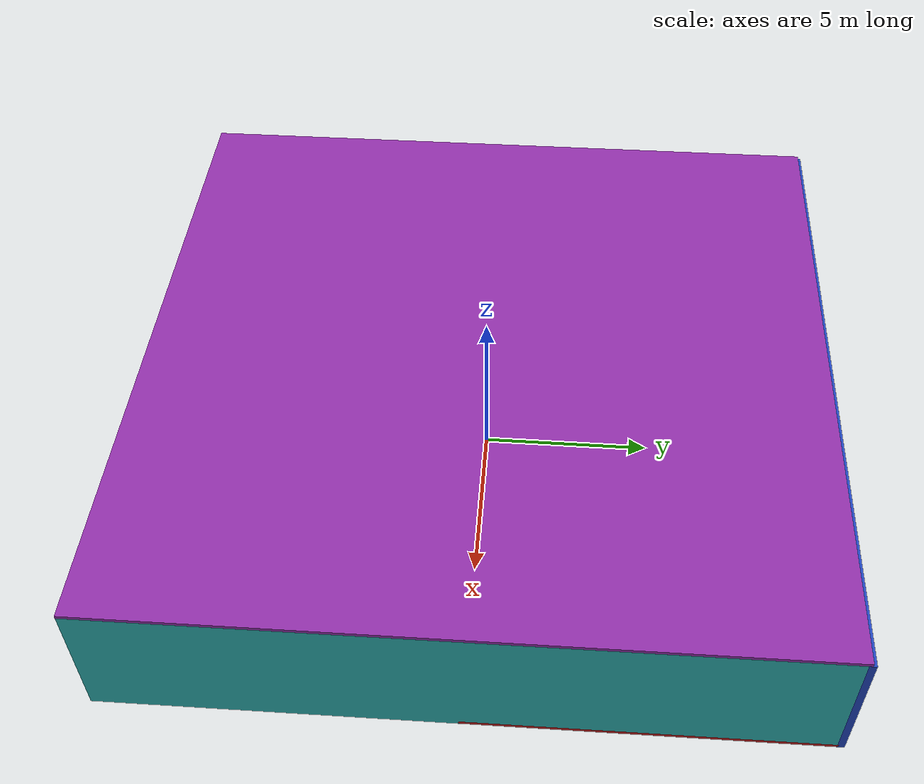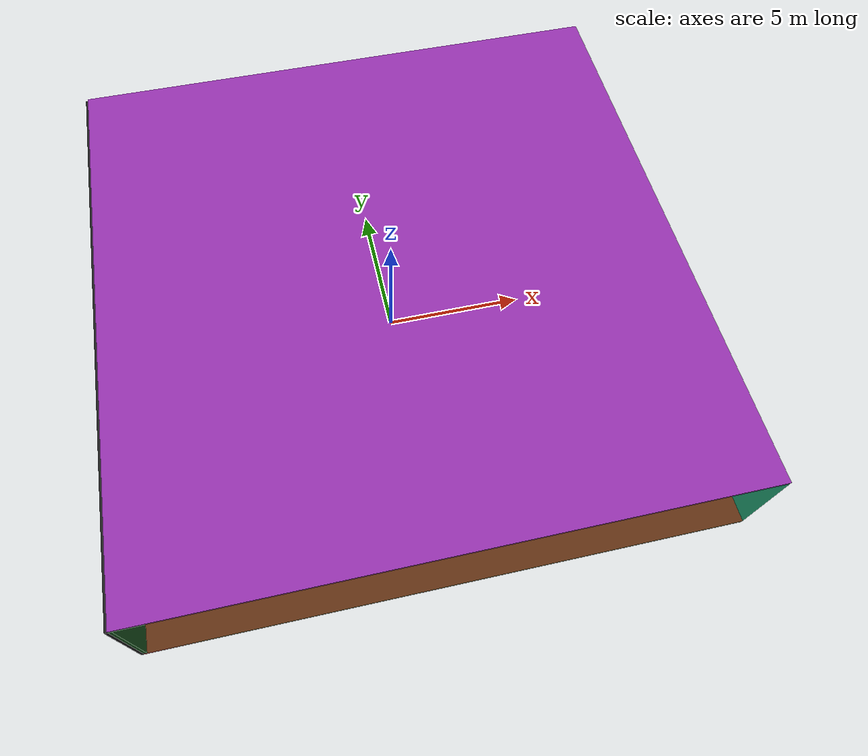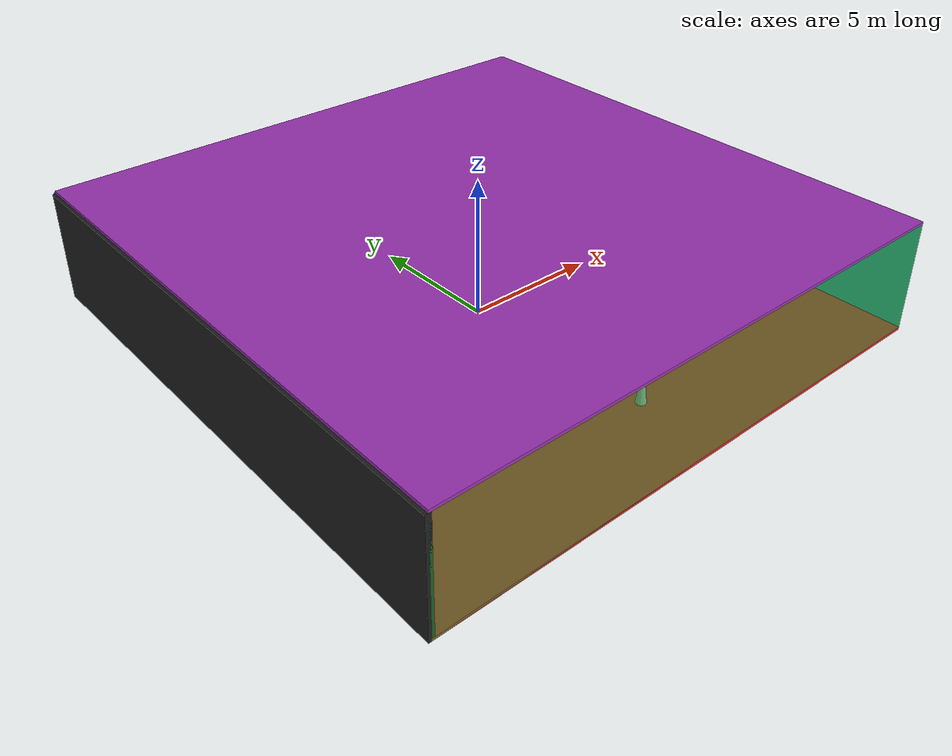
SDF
<sdf version="1.4">
 <world name="default">
  <physics type="ode">
   <max_step_size>0.001</max_step_size>
   <real_time_factor>1</real_time_factor>
   <real_time_update_rate>1000</real_time_update_rate>
   <gravity>0 0 -9.8</gravity>
  </physics>
  <scene><ambient>0.4 0.4 0.4 1</ambient><background>0.7 0.7 0.7 1</background><shadows>1</shadows></scene>
  <model name="Surrounding">
   <static>1</static>
   <link name="Ceiling">
    <collision name="Ceiling_Collision"><geometry><box><size>20 20 0.1</size></box></geometry></collision>
    <visual name="Ceiling_Visual">
     <geometry><box><size>20 20 0.1</size></box></geometry>
     <material>
      <script><uri>file://media/materials/scripts/gazebo.material</uri><name>Gazebo/PurpleGlow</name></script>
     </material>
    </visual>
    <pose>0 0 4.05 0 0 0</pose>
   </link>
   <link name="Wall_South">
    <collision name="Wall_South_Collision">
     <geometry><box><size>20 0 4</size></box></geometry>
     <pose>0 0 2 0 -0 0</pose>
    </collision>
    <visual name="Wall_South_Visual">
     <pose>0 0 2 0 -0 0</pose>
     <geometry><box><size>20 0 4</size></box></geometry>
     <material>
      <script><uri>file://media/materials/scripts/gazebo.material</uri><name>Gazebo/GreenTransparent</name></script>
     </material>
    </visual>
    <velocity_decay><linear>0</linear><angular>0</angular></velocity_decay>
    <pose>0 -10 0 0 -0 0</pose>
   </link>
   <link name="Wall_East">
    <collision name="Wall_21_Collision">
     <geometry><box><size>20 0 4</size></box></geometry>
     <pose>0 0 2 0 -0 0</pose>
    </collision>
    <visual name="Wall_21_Visual">
     <pose>0 0 2 0 -0 0</pose>
     <geometry><box><size>20 0 4</size></box></geometry>
     <material>
      <script><uri>file://media/materials/scripts/gazebo.material</uri><name>Gazebo/Turquoise</name></script>
     </material>
    </visual>
    <velocity_decay><linear>0</linear><angular>0</angular></velocity_decay>
    <pose>10 0 0 0 -0 1.5708</pose>
   </link>
   <link name="Wall_North">
    <collision name="Wall_22_Collision">
     <geometry><box><size>20 0.2 4</size></box></geometry>
     <pose>0 0 2 0 -0 0</pose>
    </collision>
    <visual name="Wall_22_Visual">
     <pose>0 0 2 0 -0 0</pose>
     <geometry><box><size>20 0.2 4</size></box></geometry>
     <material>
      <script><uri>file://media/materials/scripts/gazebo.material</uri><name>Gazebo/BlueLaser</name></script>
     </material>
    </visual>
    <velocity_decay><linear>0</linear><angular>0</angular></velocity_decay>
    <pose>0 10 0 0 -0 0</pose>
   </link>
   <link name="Wall_West">
    <collision name="Wall_23_Collision">
     <geometry><box><size>20 0.2 4</size></box></geometry>
     <pose>0 0 2 0 -0 0</pose>
    </collision>
    <visual name="Wall_23_Visual">
     <pose>0 0 2 0 -0 0</pose>
     <geometry><box><size>20 0.2 4</size></box></geometry>
     <material>
      <script><uri>file://media/materials/scripts/gazebo.material</uri><name>Gazebo/Black</name></script>
     </material>
    </visual>
    <velocity_decay><linear>0</linear><angular>0</angular></velocity_decay>
    <pose>-10 0 0 0 0 -1.5708</pose>
   </link>
   <link name="Ground_link">
    <collision name="collision">
     <pose>0 0 .05 0 -0 0</pose>
     <geometry><box><size>20 20 0.1</size></box></geometry>
    </collision>
    <visual name="visual">
     <pose>0 0 .05 0 -0 0</pose>
     <geometry><box><size>20 20 0.1</size></box></geometry>
     <material>
      <script><uri>file://media/materials/scripts/gazebo.material</uri><name>Gazebo/RedBright</name></script>
     </material>
    </visual>
   </link>
   <static>1</static>
  </model>
  <spherical_coordinates>
   <surface_model>EARTH_WGS84</surface_model>
   <latitude_deg>0</latitude_deg>
   <longitude_deg>0</longitude_deg>
   <elevation>0</elevation>
   <heading_deg>0</heading_deg>
  </spherical_coordinates>
  <light name="lightball_0" type="diffuse">
   <diffuse>0.8 0.8 0.8 1</diffuse>
   <specular>0.2 0.2 0.2 1</specular>
   <attenuation>
    <range>100</range>
    <constant>0.7</constant>
    <linear>0.01</linear>
    <quadratic>0.001</quadratic>
   </attenuation>
   <direction>-0.5 0.1 -0.9</direction>
   <pose>-7.64657728138 -3.76378754727 2.23897532695 0 0 0</pose>
  </light>
  <light name="lightball_1" type="diffuse">
   <diffuse>0.8 0.8 0.8 1</diffuse>
   <specular>0.2 0.2 0.2 1</specular>
   <attenuation>
    <range>100</range>
    <constant>0.7</constant>
    <linear>0.01</linear>
    <quadratic>0.001</quadratic>
   </attenuation>
   <direction>-0.5 0.1 -0.9</direction>
   <pose>-2.84628158727 -0.421001318708 1.86020912943 0 0 0</pose>
  </light>
  <light name="lightball_2" type="diffuse">
   <diffuse>0.8 0.8 0.8 1</diffuse>
   <specular>0.2 0.2 0.2 1</specular>
   <attenuation>
    <range>100</range>
    <constant>0.7</constant>
    <linear>0.01</linear>
    <quadratic>0.001</quadratic>
   </attenuation>
   <direction>-0.5 0.1 -0.9</direction>
   <pose>-5.85131006304 2.18383529554 3.31256825295 0 0 0</pose>
  </light>
  <light name="lightball_3" type="diffuse">
   <diffuse>0.8 0.8 0.8 1</diffuse>
   <specular>0.2 0.2 0.2 1</specular>
   <attenuation>
    <range>100</range>
    <constant>0.7</constant>
    <linear>0.01</linear>
    <quadratic>0.001</quadratic>
   </attenuation>
   <direction>-0.5 0.1 -0.9</direction>
   <pose>3.25616595829 0.620774142731 2.56569192961 0 0 0</pose>
  </light>
  <light name="lightball_4" type="diffuse">
   <diffuse>0.8 0.8 0.8 1</diffuse>
   <specular>0.2 0.2 0.2 1</specular>
   <attenuation>
    <range>100</range>
    <constant>0.7</constant>
    <linear>0.01</linear>
    <quadratic>0.001</quadratic>
   </attenuation>
   <direction>-0.5 0.1 -0.9</direction>
   <pose>-0.524870781098 1.98224264767 1.90341111637 0 0 0</pose>
  </light>
  <light name="lightball_5" type="diffuse">
   <diffuse>0.8 0.8 0.8 1</diffuse>
   <specular>0.2 0.2 0.2 1</specular>
   <attenuation>
    <range>100</range>
    <constant>0.7</constant>
    <linear>0.01</linear>
    <quadratic>0.001</quadratic>
   </attenuation>
   <direction>-0.5 0.1 -0.9</direction>
   <pose>3.6314295619 5.92072400648 2.03778731744 0 0 0</pose>
  </light>
  <light name="lightball_6" type="diffuse">
   <diffuse>0.8 0.8 0.8 1</diffuse>
   <specular>0.2 0.2 0.2 1</specular>
   <attenuation>
    <range>100</range>
    <constant>0.7</constant>
    <linear>0.01</linear>
    <quadratic>0.001</quadratic>
   </attenuation>
   <direction>-0.5 0.1 -0.9</direction>
   <pose>8.83852716857 -5.21525321805 1.48951109389 0 0 0</pose>
  </light>
  <light name="lightball_7" type="diffuse">
   <diffuse>0.8 0.8 0.8 1</diffuse>
   <specular>0.2 0.2 0.2 1</specular>
   <attenuation>
    <range>100</range>
    <constant>0.7</constant>
    <linear>0.01</linear>
    <quadratic>0.001</quadratic>
   </attenuation>
   <direction>-0.5 0.1 -0.9</direction>
   <pose>-3.25923224716 -3.05209790442 0.958232550634 0 0 0</pose>
  </light>
  <light name="lightball_8" type="diffuse">
   <diffuse>0.8 0.8 0.8 1</diffuse>
   <specular>0.2 0.2 0.2 1</specular>
   <attenuation>
    <range>100</range>
    <constant>0.7</constant>
    <linear>0.01</linear>
    <quadratic>0.001</quadratic>
   </attenuation>
   <direction>-0.5 0.1 -0.9</direction>
   <pose>-2.17080772942 1.12733330875 0.526674595004 0 0 0</pose>
  </light>
  <light name="lightball_9" type="diffuse">
   <diffuse>0.8 0.8 0.8 1</diffuse>
   <specular>0.2 0.2 0.2 1</specular>
   <attenuation>
    <range>100</range>
    <constant>0.7</constant>
    <linear>0.01</linear>
    <quadratic>0.001</quadratic>
   </attenuation>
   <direction>-0.5 0.1 -0.9</direction>
   <pose>-1.1870310003 6.11658799924 0.949337903654 0 0 0</pose>
  </light>
  <light name="lightball_10" type="diffuse">
   <diffuse>0.8 0.8 0.8 1</diffuse>
   <specular>0.2 0.2 0.2 1</specular>
   <attenuation>
    <range>100</range>
    <constant>0.7</constant>
    <linear>0.01</linear>
    <quadratic>0.001</quadratic>
   </attenuation>
   <direction>-0.5 0.1 -0.9</direction>
   <pose>-0.0191358014476 -7.59409716243 3.29214379585 0 0 0</pose>
  </light>
  <light name="lightball_11" type="diffuse">
   <diffuse>0.8 0.8 0.8 1</diffuse>
   <specular>0.2 0.2 0.2 1</specular>
   <attenuation>
    <range>100</range>
    <constant>0.7</constant>
    <linear>0.01</linear>
    <quadratic>0.001</quadratic>
   </attenuation>
   <direction>-0.5 0.1 -0.9</direction>
   <pose>1.44007800928 -1.35905305775 3.62533530986 0 0 0</pose>
  </light>
  <light name="lightball_12" type="diffuse">
   <diffuse>0.8 0.8 0.8 1</diffuse>
   <specular>0.2 0.2 0.2 1</specular>
   <attenuation>
    <range>100</range>
    <constant>0.7</constant>
    <linear>0.01</linear>
    <quadratic>0.001</quadratic>
   </attenuation>
   <direction>-0.5 0.1 -0.9</direction>
   <pose>-3.16898591882 8.62214080948 3.29405113347 0 0 0</pose>
  </light>
  <include><uri>model://cabinet</uri><pose>-4.77949685506 -0.837239519561 0 0 0 0.065995505981</pose></include>
  <include><uri>model://cabinet</uri><pose>-1.3701294354 7.2392826722 0 0 0 2.88327225782</pose></include>
  <include>
   <uri>model://construction_cone</uri>
   <pose>0.374371711783 -7.13056425827 0 0 0 0.754362240001</pose>
  </include>
  <include>
   <uri>model://textured_shapes</uri>
   <pose>0.326084825046 4.03396968027 0 0 0 3.11478612213</pose>
  </include>
  <include>
   <uri>model://textured_shapes</uri>
   <pose>7.48520022536 5.0995874461 0 0 0 2.07306997412</pose>
  </include>
  <include><uri>model://cabinet</uri><pose>7.06645660567 7.09062259609 0 0 0 2.02099936705</pose></include>
 </world>
</sdf>

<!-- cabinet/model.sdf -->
<sdf version="1.5">
  <model name="cabinet">
    <static>true</static>
    <link name="cabinet_bottom_plate">
      <inertial>
        <pose>0 0 -1 0 0 0</pose>
        <inertia>
          <ixx>2.050000</ixx>
          <ixy>0</ixy>
          <ixz>0</ixz>
          <iyy>2.050000</iyy>
          <iyz>0</iyz>
          <izz>2.050000</izz>
        </inertia>
        <mass>25.000000</mass>
      </inertial>
      <collision name="cabinet_bottom_plate_geom">
        <pose>0 0 0.010000 0 0 0</pose>
        <geometry>
          <box>
            <size>0.450000 0.450000 0.020000</size>
          </box>
        </geometry>
      </collision>
      <visual name="cabinet_bottom_plate_geom_visual">
        <pose>0 0 0.010000 0 0 0</pose>
        <geometry>
          <box>
            <size>0.450000 0.450000 0.020000</size>
          </box>
        </geometry>
        <material>
          <script>
            <uri>model://media/materials/scripts/gazebo.material</uri>
            <name>Gazebo/Wood</name>
          </script>
        </material>
      </visual>
      <collision name="cabinet_bottom_plate_geom_cabinet_back_plate">
        <pose>0.235000 0 0.510000 0 0 0</pose>
        <geometry>
          <box>
            <size>0.020000 0.450000 1.020000</size>
          </box>
        </geometry>
      </collision>
      <visual name="cabinet_bottom_plate_geom_cabinet_back_plate_visual">
        <pose>0.235000 0 0.510000 0 0 0</pose>
        <geometry>
          <box>
            <size>0.020000 0.450000 1.020000</size>
          </box>
        </geometry>
        <material>
          <script>
            <uri>model://media/materials/scripts/gazebo.material</uri>
            <name>Gazebo/Wood</name>
          </script>
        </material>
      </visual>
      <collision name="cabinet_bottom_plate_geom_cabinet_left_plate">
        <pose>0 0.235000 0.510000 0 0 0</pose>
        <geometry>
          <box>
            <size>0.450000 0.020000 1.020000</size>
          </box>
        </geometry>
      </collision>
      <visual name="cabinet_bottom_plate_geom_cabinet_left_plate_visual">
        <pose>0 0.235000 0.510000 0 0 0</pose>
        <geometry>
          <box>
            <size>0.450000 0.020000 1.020000</size>
          </box>
        </geometry>
        <material>
          <script>
            <uri>model://media/materials/scripts/gazebo.material</uri>
            <name>Gazebo/Wood</name>
          </script>
        </material>
      </visual>
      <collision name="cabinet_bottom_plate_geom_cabinet_middle_plate">
        <pose>0 0 0.510000 0 0 0</pose>
        <geometry>
          <box>
            <size>0.450000 0.450000 0.020000</size>
          </box>
        </geometry>
      </collision>
      <visual name="cabinet_bottom_plate_geom_cabinet_middle_plate_visual">
        <pose>0 0 0.510000 0 0 0</pose>
        <geometry>
          <box>
            <size>0.450000 0.450000 0.020000</size>
          </box>
        </geometry>
        <material>
          <script>
            <uri>model://media/materials/scripts/gazebo.material</uri>
            <name>Gazebo/Wood</name>
          </script>
        </material>
      </visual>
      <collision name="cabinet_bottom_plate_geom_cabinet_right_plate">
        <pose>0 -0.235000 0.510000 0 0 0</pose>
        <geometry>
          <box>
            <size>0.450000 0.020000 1.020000</size>
          </box>
        </geometry>
      </collision>
      <visual name="cabinet_bottom_plate_geom_cabinet_right_plate_visual">
        <pose>0 -0.235000 0.510000 0 0 0</pose>
        <geometry>
          <box>
            <size>0.450000 0.020000 1.020000</size>
          </box>
        </geometry>
        <material>
          <script>
            <uri>model://media/materials/scripts/gazebo.material</uri>
            <name>Gazebo/Wood</name>
          </script>
        </material>
      </visual>
      <collision name="cabinet_bottom_plate_geom_cabinet_top_plate">
        <pose>0 0 1.010000 0 0 0</pose>
        <geometry>
          <box>
            <size>0.450000 0.450000 0.020000</size>
          </box>
        </geometry>
      </collision>
      <visual name="cabinet_bottom_plate_geom_cabinet_top_plate_visual">
        <pose>0 0 1.010000 0 0 0</pose>
        <geometry>
          <box>
            <size>0.450000 0.450000 0.020000</size>
          </box>
        </geometry>
        <material>
          <script>
            <uri>model://media/materials/scripts/gazebo.material</uri>
            <name>Gazebo/Wood</name>
          </script>
        </material>
      </visual>
    </link>
  </model>
</sdf>

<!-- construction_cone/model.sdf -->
<sdf version="1.5">
  <model name="Construction Cone">
    <link name="link">
      <collision name="collision">
        <geometry>
          <mesh>
            <scale>10 10 10</scale>
            <uri>file://isr-testbed/construction_cone/meshes/construction_cone.dae</uri>
          </mesh>
        </geometry>
      </collision>
      <visual name="visual">
        <geometry>
          <mesh>
            <scale>10 10 10</scale>
            <uri>file://isr-testbed/construction_cone/meshes/construction_cone.dae</uri>
          </mesh>
        </geometry>
      </visual>
    </link>
  </model>
</sdf>

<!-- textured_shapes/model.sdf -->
<sdf version="1.6">
  <model name="textured_shapes">
    <pose>0 0 0.5 0 0 0</pose>
    <link name="box">
      <pose>0 -1.5 0 0 0 0</pose>
      <collision name="collision">
        <geometry>
          <box>
            <size>1 1 1</size>
          </box>
        </geometry>
      </collision>
      <visual name="visual">
        <geometry>
          <box>
            <size>1 1 1</size>
          </box>
        </geometry>
        <material>
          <script>
            <uri>model://../model_source/models/textured_shapes/materials/scripts</uri>
            <uri>model://../model_source/models/textured_shapes/materials/textures</uri>
            <name>TexturedShape/Squares</name>
          </script>
        </material>
      </visual>
    </link>
    <link name="sphere">
      <collision name="collision">
        <geometry>
          <sphere>
            <radius>0.5</radius>
          </sphere>
        </geometry>
      </collision>
      <visual name="visual">
        <geometry>
          <sphere>
            <radius>0.5</radius>
          </sphere>
        </geometry>
        <material>
          <script>
            <uri>model://../model_source/models/textured_shapes/materials/scripts</uri>
            <uri>model://../model_source/models/textured_shapes/materials/textures</uri>
            <name>TexturedShape/Squares</name>
          </script>
        </material>
      </visual>
    </link>
    <link name="cylinder">
      <pose>0 1.5 0 0 0 0</pose>
      <collision name="collision">
        <geometry>
          <cylinder>
            <radius>0.5</radius>
            <length>1</length>
          </cylinder>
        </geometry>
      </collision>
      <visual name="visual">
        <geometry>
          <cylinder>
            <radius>0.5</radius>
            <length>1</length>
          </cylinder>
        </geometry>
        <material>
          <script>
            <uri>model://../model_source/models/textured_shapes/materials/scripts</uri>
            <uri>model://../model_source/models/textured_shapes/materials/textures</uri>
            <name>TexturedShape/Squares</name>
          </script>
        </material>
      </visual>
    </link>
  </model>
</sdf>
